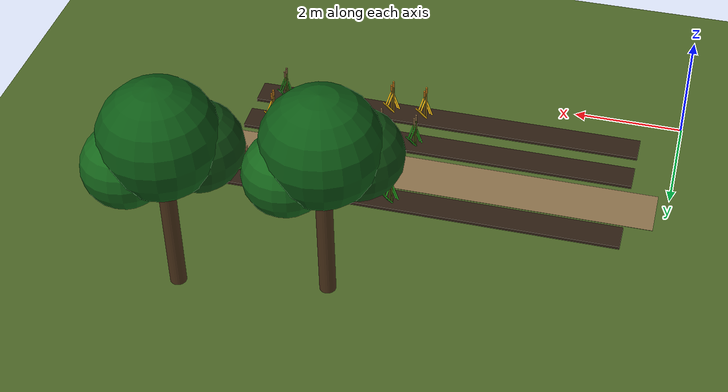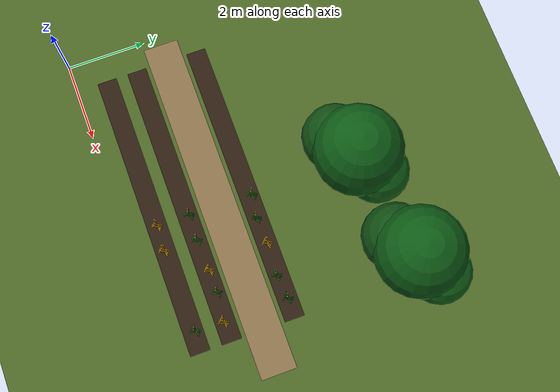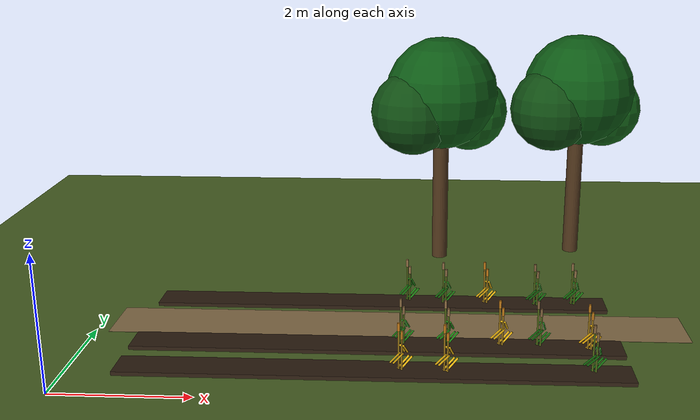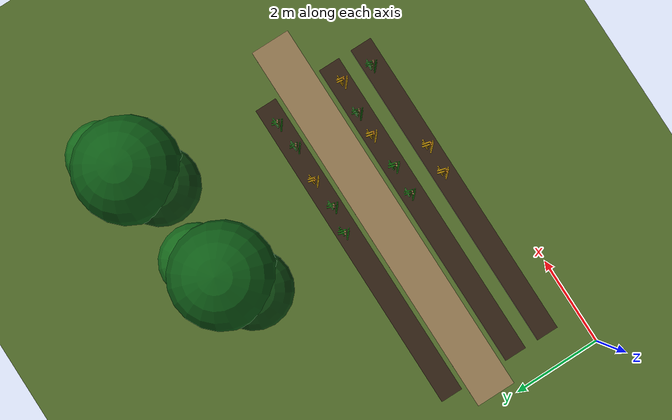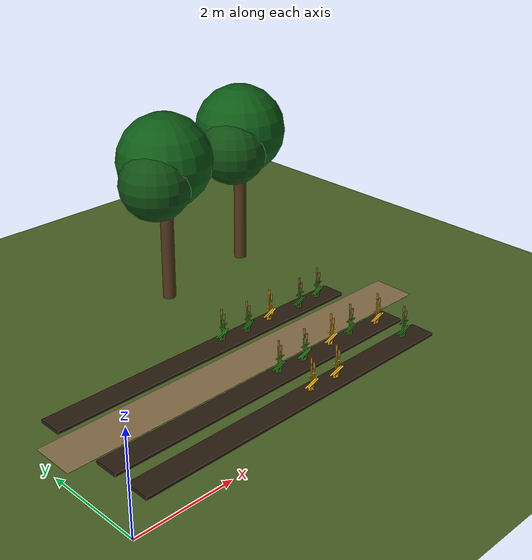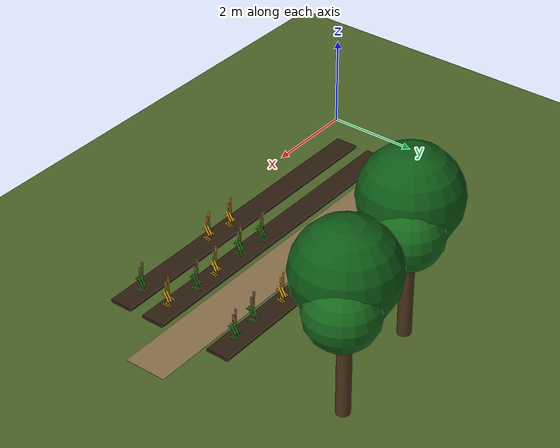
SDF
<sdf version="1.6">
 <world name="default">
  <model name="ground">
   <static>true</static>
   <link name="link">
    <collision name="col"><geometry><plane><normal>0 0 1</normal><size>40 40</size></plane></geometry></collision>
    <visual name="vis">
     <geometry><plane><normal>0 0 1</normal><size>40 40</size></plane></geometry>
     <material><ambient>0.30 0.40 0.15 1</ambient><diffuse>0.30 0.40 0.15 1</diffuse></material>
    </visual>
   </link>
  </model>
  <model name="bed_1b">
   <static>true</static>
   <pose>4.35 0.80 0.030 0 0 0.00</pose>
   <link name="link">
    <visual name="v">
     <geometry><box><size>7.30 0.50 0.060</size></box></geometry>
     <material><ambient>0.18 0.12 0.07 1</ambient><diffuse>0.18 0.12 0.07 1</diffuse></material>
    </visual>
   </link>
  </model>
  <model name="plant_16">
   <static>true</static>
   <pose>4.72 0.82 0 0 0 0</pose>
   <link name="link">
    <visual name="stem_0">
     <pose>0.000 0.000 0.320 0.000 0.000 0.000</pose>
     <geometry><cylinder><radius>0.014</radius><length>0.64</length></cylinder></geometry>
     <material><ambient>0.55 0.42 0.08 1</ambient><diffuse>0.55 0.42 0.08 1</diffuse></material>
    </visual>
    <visual name="leaf_0_0">
     <pose>0.050 0.040 0.130 0.000 0.700 0.150</pose>
     <geometry><cylinder><radius>0.014</radius><length>0.3</length></cylinder></geometry>
     <material><ambient>0.95 0.73 0.06 1</ambient><diffuse>0.95 0.73 0.06 1</diffuse></material>
    </visual>
    <visual name="leaf_0_1">
     <pose>-0.050 -0.040 0.250 0.000 -0.720 2.400</pose>
     <geometry><cylinder><radius>0.014</radius><length>0.28</length></cylinder></geometry>
     <material><ambient>0.95 0.73 0.06 1</ambient><diffuse>0.95 0.73 0.06 1</diffuse></material>
    </visual>
    <visual name="leaf_0_2">
     <pose>0.050 0.040 0.360 0.000 0.780 4.400</pose>
     <geometry><cylinder><radius>0.014</radius><length>0.24</length></cylinder></geometry>
     <material><ambient>0.95 0.73 0.06 1</ambient><diffuse>0.95 0.73 0.06 1</diffuse></material>
    </visual>
    <visual name="ear_0">
     <pose>0.000 0.000 0.700 0.000 0.000 0.000</pose>
     <geometry><cylinder><radius>0.02</radius><length>0.12</length></cylinder></geometry>
     <material><ambient>0.72 0.45 0.08 1</ambient><diffuse>0.72 0.45 0.08 1</diffuse></material>
    </visual>
    <visual name="stem_1">
     <pose>0.045 -0.025 0.265 0.000 0.000 0.000</pose>
     <geometry><cylinder><radius>0.014</radius><length>0.53</length></cylinder></geometry>
     <material><ambient>0.55 0.42 0.08 1</ambient><diffuse>0.55 0.42 0.08 1</diffuse></material>
    </visual>
    <visual name="leaf_1_0">
     <pose>0.095 0.015 0.130 0.000 0.700 0.150</pose>
     <geometry><cylinder><radius>0.014</radius><length>0.3</length></cylinder></geometry>
     <material><ambient>0.95 0.73 0.06 1</ambient><diffuse>0.95 0.73 0.06 1</diffuse></material>
    </visual>
    <visual name="leaf_1_1">
     <pose>-0.005 -0.065 0.250 0.000 -0.720 2.400</pose>
     <geometry><cylinder><radius>0.014</radius><length>0.28</length></cylinder></geometry>
     <material><ambient>0.95 0.73 0.06 1</ambient><diffuse>0.95 0.73 0.06 1</diffuse></material>
    </visual>
    <visual name="leaf_1_2">
     <pose>0.095 0.015 0.360 0.000 0.780 4.400</pose>
     <geometry><cylinder><radius>0.014</radius><length>0.24</length></cylinder></geometry>
     <material><ambient>0.95 0.73 0.06 1</ambient><diffuse>0.95 0.73 0.06 1</diffuse></material>
    </visual>
    <visual name="ear_1">
     <pose>0.045 -0.025 0.590 0.000 0.000 0.000</pose>
     <geometry><cylinder><radius>0.02</radius><length>0.12</length></cylinder></geometry>
     <material><ambient>0.72 0.45 0.08 1</ambient><diffuse>0.72 0.45 0.08 1</diffuse></material>
    </visual>
   </link>
  </model>
  <model name="plant_17">
   <static>true</static>
   <pose>5.36 0.79 0 0 0 0</pose>
   <link name="link">
    <visual name="stem_0">
     <pose>0.000 0.000 0.320 0.000 0.000 0.000</pose>
     <geometry><cylinder><radius>0.014</radius><length>0.64</length></cylinder></geometry>
     <material><ambient>0.55 0.42 0.08 1</ambient><diffuse>0.55 0.42 0.08 1</diffuse></material>
    </visual>
    <visual name="leaf_0_0">
     <pose>0.050 0.040 0.130 0.000 0.700 0.150</pose>
     <geometry><cylinder><radius>0.014</radius><length>0.3</length></cylinder></geometry>
     <material><ambient>0.95 0.73 0.06 1</ambient><diffuse>0.95 0.73 0.06 1</diffuse></material>
    </visual>
    <visual name="leaf_0_1">
     <pose>-0.050 -0.040 0.250 0.000 -0.720 2.400</pose>
     <geometry><cylinder><radius>0.014</radius><length>0.28</length></cylinder></geometry>
     <material><ambient>0.95 0.73 0.06 1</ambient><diffuse>0.95 0.73 0.06 1</diffuse></material>
    </visual>
    <visual name="leaf_0_2">
     <pose>0.050 0.040 0.360 0.000 0.780 4.400</pose>
     <geometry><cylinder><radius>0.014</radius><length>0.24</length></cylinder></geometry>
     <material><ambient>0.95 0.73 0.06 1</ambient><diffuse>0.95 0.73 0.06 1</diffuse></material>
    </visual>
    <visual name="ear_0">
     <pose>0.000 0.000 0.700 0.000 0.000 0.000</pose>
     <geometry><cylinder><radius>0.02</radius><length>0.12</length></cylinder></geometry>
     <material><ambient>0.72 0.45 0.08 1</ambient><diffuse>0.72 0.45 0.08 1</diffuse></material>
    </visual>
    <visual name="stem_1">
     <pose>0.045 -0.025 0.265 0.000 0.000 0.000</pose>
     <geometry><cylinder><radius>0.014</radius><length>0.53</length></cylinder></geometry>
     <material><ambient>0.55 0.42 0.08 1</ambient><diffuse>0.55 0.42 0.08 1</diffuse></material>
    </visual>
    <visual name="leaf_1_0">
     <pose>0.095 0.015 0.130 0.000 0.700 0.150</pose>
     <geometry><cylinder><radius>0.014</radius><length>0.3</length></cylinder></geometry>
     <material><ambient>0.95 0.73 0.06 1</ambient><diffuse>0.95 0.73 0.06 1</diffuse></material>
    </visual>
    <visual name="leaf_1_1">
     <pose>-0.005 -0.065 0.250 0.000 -0.720 2.400</pose>
     <geometry><cylinder><radius>0.014</radius><length>0.28</length></cylinder></geometry>
     <material><ambient>0.95 0.73 0.06 1</ambient><diffuse>0.95 0.73 0.06 1</diffuse></material>
    </visual>
    <visual name="leaf_1_2">
     <pose>0.095 0.015 0.360 0.000 0.780 4.400</pose>
     <geometry><cylinder><radius>0.014</radius><length>0.24</length></cylinder></geometry>
     <material><ambient>0.95 0.73 0.06 1</ambient><diffuse>0.95 0.73 0.06 1</diffuse></material>
    </visual>
    <visual name="ear_1">
     <pose>0.045 -0.025 0.590 0.000 0.000 0.000</pose>
     <geometry><cylinder><radius>0.02</radius><length>0.12</length></cylinder></geometry>
     <material><ambient>0.72 0.45 0.08 1</ambient><diffuse>0.72 0.45 0.08 1</diffuse></material>
    </visual>
   </link>
  </model>
  <model name="plant_20">
   <static>true</static>
   <pose>7.43 0.87 0 0 0 0</pose>
   <link name="link">
    <visual name="stem_0">
     <pose>0.000 0.000 0.320 0.000 0.000 0.000</pose>
     <geometry><cylinder><radius>0.014</radius><length>0.64</length></cylinder></geometry>
     <material><ambient>0.30 0.38 0.08 1</ambient><diffuse>0.30 0.38 0.08 1</diffuse></material>
    </visual>
    <visual name="leaf_0_0">
     <pose>0.050 0.040 0.130 0.000 0.700 0.150</pose>
     <geometry><cylinder><radius>0.014</radius><length>0.3</length></cylinder></geometry>
     <material><ambient>0.08 0.42 0.05 1</ambient><diffuse>0.08 0.42 0.05 1</diffuse></material>
    </visual>
    <visual name="leaf_0_1">
     <pose>-0.050 -0.040 0.250 0.000 -0.720 2.400</pose>
     <geometry><cylinder><radius>0.014</radius><length>0.28</length></cylinder></geometry>
     <material><ambient>0.08 0.42 0.05 1</ambient><diffuse>0.08 0.42 0.05 1</diffuse></material>
    </visual>
    <visual name="leaf_0_2">
     <pose>0.050 0.040 0.360 0.000 0.780 4.400</pose>
     <geometry><cylinder><radius>0.014</radius><length>0.24</length></cylinder></geometry>
     <material><ambient>0.08 0.42 0.05 1</ambient><diffuse>0.08 0.42 0.05 1</diffuse></material>
    </visual>
    <visual name="ear_0">
     <pose>0.000 0.000 0.700 0.000 0.000 0.000</pose>
     <geometry><cylinder><radius>0.02</radius><length>0.12</length></cylinder></geometry>
     <material><ambient>0.48 0.36 0.22 1</ambient><diffuse>0.48 0.36 0.22 1</diffuse></material>
    </visual>
    <visual name="stem_1">
     <pose>0.045 -0.025 0.265 0.000 0.000 0.000</pose>
     <geometry><cylinder><radius>0.014</radius><length>0.53</length></cylinder></geometry>
     <material><ambient>0.30 0.38 0.08 1</ambient><diffuse>0.30 0.38 0.08 1</diffuse></material>
    </visual>
    <visual name="leaf_1_0">
     <pose>0.095 0.015 0.130 0.000 0.700 0.150</pose>
     <geometry><cylinder><radius>0.014</radius><length>0.3</length></cylinder></geometry>
     <material><ambient>0.08 0.42 0.05 1</ambient><diffuse>0.08 0.42 0.05 1</diffuse></material>
    </visual>
    <visual name="leaf_1_1">
     <pose>-0.005 -0.065 0.250 0.000 -0.720 2.400</pose>
     <geometry><cylinder><radius>0.014</radius><length>0.28</length></cylinder></geometry>
     <material><ambient>0.08 0.42 0.05 1</ambient><diffuse>0.08 0.42 0.05 1</diffuse></material>
    </visual>
    <visual name="leaf_1_2">
     <pose>0.095 0.015 0.360 0.000 0.780 4.400</pose>
     <geometry><cylinder><radius>0.014</radius><length>0.24</length></cylinder></geometry>
     <material><ambient>0.08 0.42 0.05 1</ambient><diffuse>0.08 0.42 0.05 1</diffuse></material>
    </visual>
    <visual name="ear_1">
     <pose>0.045 -0.025 0.590 0.000 0.000 0.000</pose>
     <geometry><cylinder><radius>0.02</radius><length>0.12</length></cylinder></geometry>
     <material><ambient>0.48 0.36 0.22 1</ambient><diffuse>0.48 0.36 0.22 1</diffuse></material>
    </visual>
   </link>
  </model>
  <model name="path_2">
   <static>true</static>
   <pose>4.65 2.40 0.002 0 0 0.00</pose>
   <link name="link">
    <visual name="v">
     <geometry><box><size>8.90 0.90 0.004</size></box></geometry>
     <material><ambient>0.55 0.45 0.30 1</ambient><diffuse>0.55 0.45 0.30 1</diffuse></material>
    </visual>
   </link>
  </model>
  <model name="bed_2a">
   <static>true</static>
   <pose>4.35 1.60 0.030 0 0 0.00</pose>
   <link name="link">
    <visual name="v">
     <geometry><box><size>7.30 0.50 0.060</size></box></geometry>
     <material><ambient>0.18 0.12 0.07 1</ambient><diffuse>0.18 0.12 0.07 1</diffuse></material>
    </visual>
   </link>
  </model>
  <model name="plant_26">
   <static>true</static>
   <pose>4.72 1.65 0 0 0 0</pose>
   <link name="link">
    <visual name="stem_0">
     <pose>0.000 0.000 0.320 0.000 0.000 0.000</pose>
     <geometry><cylinder><radius>0.014</radius><length>0.64</length></cylinder></geometry>
     <material><ambient>0.30 0.38 0.08 1</ambient><diffuse>0.30 0.38 0.08 1</diffuse></material>
    </visual>
    <visual name="leaf_0_0">
     <pose>0.050 0.040 0.130 0.000 0.700 0.150</pose>
     <geometry><cylinder><radius>0.014</radius><length>0.3</length></cylinder></geometry>
     <material><ambient>0.10 0.48 0.06 1</ambient><diffuse>0.10 0.48 0.06 1</diffuse></material>
    </visual>
    <visual name="leaf_0_1">
     <pose>-0.050 -0.040 0.250 0.000 -0.720 2.400</pose>
     <geometry><cylinder><radius>0.014</radius><length>0.28</length></cylinder></geometry>
     <material><ambient>0.10 0.48 0.06 1</ambient><diffuse>0.10 0.48 0.06 1</diffuse></material>
    </visual>
    <visual name="leaf_0_2">
     <pose>0.050 0.040 0.360 0.000 0.780 4.400</pose>
     <geometry><cylinder><radius>0.014</radius><length>0.24</length></cylinder></geometry>
     <material><ambient>0.10 0.48 0.06 1</ambient><diffuse>0.10 0.48 0.06 1</diffuse></material>
    </visual>
    <visual name="ear_0">
     <pose>0.000 0.000 0.700 0.000 0.000 0.000</pose>
     <geometry><cylinder><radius>0.02</radius><length>0.12</length></cylinder></geometry>
     <material><ambient>0.52 0.40 0.25 1</ambient><diffuse>0.52 0.40 0.25 1</diffuse></material>
    </visual>
    <visual name="stem_1">
     <pose>0.045 -0.025 0.265 0.000 0.000 0.000</pose>
     <geometry><cylinder><radius>0.014</radius><length>0.53</length></cylinder></geometry>
     <material><ambient>0.30 0.38 0.08 1</ambient><diffuse>0.30 0.38 0.08 1</diffuse></material>
    </visual>
    <visual name="leaf_1_0">
     <pose>0.095 0.015 0.130 0.000 0.700 0.150</pose>
     <geometry><cylinder><radius>0.014</radius><length>0.3</length></cylinder></geometry>
     <material><ambient>0.10 0.48 0.06 1</ambient><diffuse>0.10 0.48 0.06 1</diffuse></material>
    </visual>
    <visual name="leaf_1_1">
     <pose>-0.005 -0.065 0.250 0.000 -0.720 2.400</pose>
     <geometry><cylinder><radius>0.014</radius><length>0.28</length></cylinder></geometry>
     <material><ambient>0.10 0.48 0.06 1</ambient><diffuse>0.10 0.48 0.06 1</diffuse></material>
    </visual>
    <visual name="leaf_1_2">
     <pose>0.095 0.015 0.360 0.000 0.780 4.400</pose>
     <geometry><cylinder><radius>0.014</radius><length>0.24</length></cylinder></geometry>
     <material><ambient>0.10 0.48 0.06 1</ambient><diffuse>0.10 0.48 0.06 1</diffuse></material>
    </visual>
    <visual name="ear_1">
     <pose>0.045 -0.025 0.590 0.000 0.000 0.000</pose>
     <geometry><cylinder><radius>0.02</radius><length>0.12</length></cylinder></geometry>
     <material><ambient>0.52 0.40 0.25 1</ambient><diffuse>0.52 0.40 0.25 1</diffuse></material>
    </visual>
   </link>
  </model>
  <model name="plant_27">
   <static>true</static>
   <pose>5.38 1.62 0 0 0 0</pose>
   <link name="link">
    <visual name="stem_0">
     <pose>0.000 0.000 0.320 0.000 0.000 0.000</pose>
     <geometry><cylinder><radius>0.014</radius><length>0.64</length></cylinder></geometry>
     <material><ambient>0.30 0.38 0.08 1</ambient><diffuse>0.30 0.38 0.08 1</diffuse></material>
    </visual>
    <visual name="leaf_0_0">
     <pose>0.050 0.040 0.130 0.000 0.700 0.150</pose>
     <geometry><cylinder><radius>0.014</radius><length>0.3</length></cylinder></geometry>
     <material><ambient>0.12 0.55 0.08 1</ambient><diffuse>0.12 0.55 0.08 1</diffuse></material>
    </visual>
    <visual name="leaf_0_1">
     <pose>-0.050 -0.040 0.250 0.000 -0.720 2.400</pose>
     <geometry><cylinder><radius>0.014</radius><length>0.28</length></cylinder></geometry>
     <material><ambient>0.12 0.55 0.08 1</ambient><diffuse>0.12 0.55 0.08 1</diffuse></material>
    </visual>
    <visual name="leaf_0_2">
     <pose>0.050 0.040 0.360 0.000 0.780 4.400</pose>
     <geometry><cylinder><radius>0.014</radius><length>0.24</length></cylinder></geometry>
     <material><ambient>0.12 0.55 0.08 1</ambient><diffuse>0.12 0.55 0.08 1</diffuse></material>
    </visual>
    <visual name="ear_0">
     <pose>0.000 0.000 0.700 0.000 0.000 0.000</pose>
     <geometry><cylinder><radius>0.02</radius><length>0.12</length></cylinder></geometry>
     <material><ambient>0.56 0.43 0.26 1</ambient><diffuse>0.56 0.43 0.26 1</diffuse></material>
    </visual>
    <visual name="stem_1">
     <pose>0.045 -0.025 0.265 0.000 0.000 0.000</pose>
     <geometry><cylinder><radius>0.014</radius><length>0.53</length></cylinder></geometry>
     <material><ambient>0.30 0.38 0.08 1</ambient><diffuse>0.30 0.38 0.08 1</diffuse></material>
    </visual>
    <visual name="leaf_1_0">
     <pose>0.095 0.015 0.130 0.000 0.700 0.150</pose>
     <geometry><cylinder><radius>0.014</radius><length>0.3</length></cylinder></geometry>
     <material><ambient>0.12 0.55 0.08 1</ambient><diffuse>0.12 0.55 0.08 1</diffuse></material>
    </visual>
    <visual name="leaf_1_1">
     <pose>-0.005 -0.065 0.250 0.000 -0.720 2.400</pose>
     <geometry><cylinder><radius>0.014</radius><length>0.28</length></cylinder></geometry>
     <material><ambient>0.12 0.55 0.08 1</ambient><diffuse>0.12 0.55 0.08 1</diffuse></material>
    </visual>
    <visual name="leaf_1_2">
     <pose>0.095 0.015 0.360 0.000 0.780 4.400</pose>
     <geometry><cylinder><radius>0.014</radius><length>0.24</length></cylinder></geometry>
     <material><ambient>0.12 0.55 0.08 1</ambient><diffuse>0.12 0.55 0.08 1</diffuse></material>
    </visual>
    <visual name="ear_1">
     <pose>0.045 -0.025 0.590 0.000 0.000 0.000</pose>
     <geometry><cylinder><radius>0.02</radius><length>0.12</length></cylinder></geometry>
     <material><ambient>0.56 0.43 0.26 1</ambient><diffuse>0.56 0.43 0.26 1</diffuse></material>
    </visual>
   </link>
  </model>
  <model name="plant_28">
   <static>true</static>
   <pose>6.18 1.66 0 0 0 0</pose>
   <link name="link">
    <visual name="stem_0">
     <pose>0.000 0.000 0.320 0.000 0.000 0.000</pose>
     <geometry><cylinder><radius>0.014</radius><length>0.64</length></cylinder></geometry>
     <material><ambient>0.55 0.42 0.08 1</ambient><diffuse>0.55 0.42 0.08 1</diffuse></material>
    </visual>
    <visual name="leaf_0_0">
     <pose>0.050 0.040 0.130 0.000 0.700 0.150</pose>
     <geometry><cylinder><radius>0.014</radius><length>0.3</length></cylinder></geometry>
     <material><ambient>0.95 0.73 0.06 1</ambient><diffuse>0.95 0.73 0.06 1</diffuse></material>
    </visual>
    <visual name="leaf_0_1">
     <pose>-0.050 -0.040 0.250 0.000 -0.720 2.400</pose>
     <geometry><cylinder><radius>0.014</radius><length>0.28</length></cylinder></geometry>
     <material><ambient>0.95 0.73 0.06 1</ambient><diffuse>0.95 0.73 0.06 1</diffuse></material>
    </visual>
    <visual name="leaf_0_2">
     <pose>0.050 0.040 0.360 0.000 0.780 4.400</pose>
     <geometry><cylinder><radius>0.014</radius><length>0.24</length></cylinder></geometry>
     <material><ambient>0.95 0.73 0.06 1</ambient><diffuse>0.95 0.73 0.06 1</diffuse></material>
    </visual>
    <visual name="ear_0">
     <pose>0.000 0.000 0.700 0.000 0.000 0.000</pose>
     <geometry><cylinder><radius>0.02</radius><length>0.12</length></cylinder></geometry>
     <material><ambient>0.72 0.45 0.08 1</ambient><diffuse>0.72 0.45 0.08 1</diffuse></material>
    </visual>
    <visual name="stem_1">
     <pose>0.045 -0.025 0.265 0.000 0.000 0.000</pose>
     <geometry><cylinder><radius>0.014</radius><length>0.53</length></cylinder></geometry>
     <material><ambient>0.55 0.42 0.08 1</ambient><diffuse>0.55 0.42 0.08 1</diffuse></material>
    </visual>
    <visual name="leaf_1_0">
     <pose>0.095 0.015 0.130 0.000 0.700 0.150</pose>
     <geometry><cylinder><radius>0.014</radius><length>0.3</length></cylinder></geometry>
     <material><ambient>0.95 0.73 0.06 1</ambient><diffuse>0.95 0.73 0.06 1</diffuse></material>
    </visual>
    <visual name="leaf_1_1">
     <pose>-0.005 -0.065 0.250 0.000 -0.720 2.400</pose>
     <geometry><cylinder><radius>0.014</radius><length>0.28</length></cylinder></geometry>
     <material><ambient>0.95 0.73 0.06 1</ambient><diffuse>0.95 0.73 0.06 1</diffuse></material>
    </visual>
    <visual name="leaf_1_2">
     <pose>0.095 0.015 0.360 0.000 0.780 4.400</pose>
     <geometry><cylinder><radius>0.014</radius><length>0.24</length></cylinder></geometry>
     <material><ambient>0.95 0.73 0.06 1</ambient><diffuse>0.95 0.73 0.06 1</diffuse></material>
    </visual>
    <visual name="ear_1">
     <pose>0.045 -0.025 0.590 0.000 0.000 0.000</pose>
     <geometry><cylinder><radius>0.02</radius><length>0.12</length></cylinder></geometry>
     <material><ambient>0.72 0.45 0.08 1</ambient><diffuse>0.72 0.45 0.08 1</diffuse></material>
    </visual>
   </link>
  </model>
  <model name="plant_29">
   <static>true</static>
   <pose>6.74 1.66 0 0 0 0</pose>
   <link name="link">
    <visual name="stem_0">
     <pose>0.000 0.000 0.320 0.000 0.000 0.000</pose>
     <geometry><cylinder><radius>0.014</radius><length>0.64</length></cylinder></geometry>
     <material><ambient>0.30 0.38 0.08 1</ambient><diffuse>0.30 0.38 0.08 1</diffuse></material>
    </visual>
    <visual name="leaf_0_0">
     <pose>0.050 0.040 0.130 0.000 0.700 0.150</pose>
     <geometry><cylinder><radius>0.014</radius><length>0.3</length></cylinder></geometry>
     <material><ambient>0.08 0.42 0.05 1</ambient><diffuse>0.08 0.42 0.05 1</diffuse></material>
    </visual>
    <visual name="leaf_0_1">
     <pose>-0.050 -0.040 0.250 0.000 -0.720 2.400</pose>
     <geometry><cylinder><radius>0.014</radius><length>0.28</length></cylinder></geometry>
     <material><ambient>0.08 0.42 0.05 1</ambient><diffuse>0.08 0.42 0.05 1</diffuse></material>
    </visual>
    <visual name="leaf_0_2">
     <pose>0.050 0.040 0.360 0.000 0.780 4.400</pose>
     <geometry><cylinder><radius>0.014</radius><length>0.24</length></cylinder></geometry>
     <material><ambient>0.08 0.42 0.05 1</ambient><diffuse>0.08 0.42 0.05 1</diffuse></material>
    </visual>
    <visual name="ear_0">
     <pose>0.000 0.000 0.700 0.000 0.000 0.000</pose>
     <geometry><cylinder><radius>0.02</radius><length>0.12</length></cylinder></geometry>
     <material><ambient>0.48 0.36 0.22 1</ambient><diffuse>0.48 0.36 0.22 1</diffuse></material>
    </visual>
    <visual name="stem_1">
     <pose>0.045 -0.025 0.265 0.000 0.000 0.000</pose>
     <geometry><cylinder><radius>0.014</radius><length>0.53</length></cylinder></geometry>
     <material><ambient>0.30 0.38 0.08 1</ambient><diffuse>0.30 0.38 0.08 1</diffuse></material>
    </visual>
    <visual name="leaf_1_0">
     <pose>0.095 0.015 0.130 0.000 0.700 0.150</pose>
     <geometry><cylinder><radius>0.014</radius><length>0.3</length></cylinder></geometry>
     <material><ambient>0.08 0.42 0.05 1</ambient><diffuse>0.08 0.42 0.05 1</diffuse></material>
    </visual>
    <visual name="leaf_1_1">
     <pose>-0.005 -0.065 0.250 0.000 -0.720 2.400</pose>
     <geometry><cylinder><radius>0.014</radius><length>0.28</length></cylinder></geometry>
     <material><ambient>0.08 0.42 0.05 1</ambient><diffuse>0.08 0.42 0.05 1</diffuse></material>
    </visual>
    <visual name="leaf_1_2">
     <pose>0.095 0.015 0.360 0.000 0.780 4.400</pose>
     <geometry><cylinder><radius>0.014</radius><length>0.24</length></cylinder></geometry>
     <material><ambient>0.08 0.42 0.05 1</ambient><diffuse>0.08 0.42 0.05 1</diffuse></material>
    </visual>
    <visual name="ear_1">
     <pose>0.045 -0.025 0.590 0.000 0.000 0.000</pose>
     <geometry><cylinder><radius>0.02</radius><length>0.12</length></cylinder></geometry>
     <material><ambient>0.48 0.36 0.22 1</ambient><diffuse>0.48 0.36 0.22 1</diffuse></material>
    </visual>
   </link>
  </model>
  <model name="plant_30">
   <static>true</static>
   <pose>7.47 1.57 0 0 0 0</pose>
   <link name="link">
    <visual name="stem_0">
     <pose>0.000 0.000 0.320 0.000 0.000 0.000</pose>
     <geometry><cylinder><radius>0.014</radius><length>0.64</length></cylinder></geometry>
     <material><ambient>0.55 0.42 0.08 1</ambient><diffuse>0.55 0.42 0.08 1</diffuse></material>
    </visual>
    <visual name="leaf_0_0">
     <pose>0.050 0.040 0.130 0.000 0.700 0.150</pose>
     <geometry><cylinder><radius>0.014</radius><length>0.3</length></cylinder></geometry>
     <material><ambient>0.92 0.68 0.04 1</ambient><diffuse>0.92 0.68 0.04 1</diffuse></material>
    </visual>
    <visual name="leaf_0_1">
     <pose>-0.050 -0.040 0.250 0.000 -0.720 2.400</pose>
     <geometry><cylinder><radius>0.014</radius><length>0.28</length></cylinder></geometry>
     <material><ambient>0.92 0.68 0.04 1</ambient><diffuse>0.92 0.68 0.04 1</diffuse></material>
    </visual>
    <visual name="leaf_0_2">
     <pose>0.050 0.040 0.360 0.000 0.780 4.400</pose>
     <geometry><cylinder><radius>0.014</radius><length>0.24</length></cylinder></geometry>
     <material><ambient>0.92 0.68 0.04 1</ambient><diffuse>0.92 0.68 0.04 1</diffuse></material>
    </visual>
    <visual name="ear_0">
     <pose>0.000 0.000 0.700 0.000 0.000 0.000</pose>
     <geometry><cylinder><radius>0.02</radius><length>0.12</length></cylinder></geometry>
     <material><ambient>0.68 0.43 0.08 1</ambient><diffuse>0.68 0.43 0.08 1</diffuse></material>
    </visual>
    <visual name="stem_1">
     <pose>0.045 -0.025 0.265 0.000 0.000 0.000</pose>
     <geometry><cylinder><radius>0.014</radius><length>0.53</length></cylinder></geometry>
     <material><ambient>0.55 0.42 0.08 1</ambient><diffuse>0.55 0.42 0.08 1</diffuse></material>
    </visual>
    <visual name="leaf_1_0">
     <pose>0.095 0.015 0.130 0.000 0.700 0.150</pose>
     <geometry><cylinder><radius>0.014</radius><length>0.3</length></cylinder></geometry>
     <material><ambient>0.92 0.68 0.04 1</ambient><diffuse>0.92 0.68 0.04 1</diffuse></material>
    </visual>
    <visual name="leaf_1_1">
     <pose>-0.005 -0.065 0.250 0.000 -0.720 2.400</pose>
     <geometry><cylinder><radius>0.014</radius><length>0.28</length></cylinder></geometry>
     <material><ambient>0.92 0.68 0.04 1</ambient><diffuse>0.92 0.68 0.04 1</diffuse></material>
    </visual>
    <visual name="leaf_1_2">
     <pose>0.095 0.015 0.360 0.000 0.780 4.400</pose>
     <geometry><cylinder><radius>0.014</radius><length>0.24</length></cylinder></geometry>
     <material><ambient>0.92 0.68 0.04 1</ambient><diffuse>0.92 0.68 0.04 1</diffuse></material>
    </visual>
    <visual name="ear_1">
     <pose>0.045 -0.025 0.590 0.000 0.000 0.000</pose>
     <geometry><cylinder><radius>0.02</radius><length>0.12</length></cylinder></geometry>
     <material><ambient>0.68 0.43 0.08 1</ambient><diffuse>0.68 0.43 0.08 1</diffuse></material>
    </visual>
   </link>
  </model>
  <model name="bed_2b">
   <static>true</static>
   <pose>4.35 3.20 0.030 0 0 0.00</pose>
   <link name="link">
    <visual name="v">
     <geometry><box><size>7.30 0.50 0.060</size></box></geometry>
     <material><ambient>0.18 0.12 0.07 1</ambient><diffuse>0.18 0.12 0.07 1</diffuse></material>
    </visual>
   </link>
  </model>
  <model name="plant_36">
   <static>true</static>
   <pose>4.77 3.26 0 0 0 0</pose>
   <link name="link">
    <visual name="stem_0">
     <pose>0.000 0.000 0.320 0.000 0.000 0.000</pose>
     <geometry><cylinder><radius>0.014</radius><length>0.64</length></cylinder></geometry>
     <material><ambient>0.30 0.38 0.08 1</ambient><diffuse>0.30 0.38 0.08 1</diffuse></material>
    </visual>
    <visual name="leaf_0_0">
     <pose>0.050 0.040 0.130 0.000 0.700 0.150</pose>
     <geometry><cylinder><radius>0.014</radius><length>0.3</length></cylinder></geometry>
     <material><ambient>0.12 0.55 0.08 1</ambient><diffuse>0.12 0.55 0.08 1</diffuse></material>
    </visual>
    <visual name="leaf_0_1">
     <pose>-0.050 -0.040 0.250 0.000 -0.720 2.400</pose>
     <geometry><cylinder><radius>0.014</radius><length>0.28</length></cylinder></geometry>
     <material><ambient>0.12 0.55 0.08 1</ambient><diffuse>0.12 0.55 0.08 1</diffuse></material>
    </visual>
    <visual name="leaf_0_2">
     <pose>0.050 0.040 0.360 0.000 0.780 4.400</pose>
     <geometry><cylinder><radius>0.014</radius><length>0.24</length></cylinder></geometry>
     <material><ambient>0.12 0.55 0.08 1</ambient><diffuse>0.12 0.55 0.08 1</diffuse></material>
    </visual>
    <visual name="ear_0">
     <pose>0.000 0.000 0.700 0.000 0.000 0.000</pose>
     <geometry><cylinder><radius>0.02</radius><length>0.12</length></cylinder></geometry>
     <material><ambient>0.56 0.43 0.26 1</ambient><diffuse>0.56 0.43 0.26 1</diffuse></material>
    </visual>
    <visual name="stem_1">
     <pose>0.045 -0.025 0.265 0.000 0.000 0.000</pose>
     <geometry><cylinder><radius>0.014</radius><length>0.53</length></cylinder></geometry>
     <material><ambient>0.30 0.38 0.08 1</ambient><diffuse>0.30 0.38 0.08 1</diffuse></material>
    </visual>
    <visual name="leaf_1_0">
     <pose>0.095 0.015 0.130 0.000 0.700 0.150</pose>
     <geometry><cylinder><radius>0.014</radius><length>0.3</length></cylinder></geometry>
     <material><ambient>0.12 0.55 0.08 1</ambient><diffuse>0.12 0.55 0.08 1</diffuse></material>
    </visual>
    <visual name="leaf_1_1">
     <pose>-0.005 -0.065 0.250 0.000 -0.720 2.400</pose>
     <geometry><cylinder><radius>0.014</radius><length>0.28</length></cylinder></geometry>
     <material><ambient>0.12 0.55 0.08 1</ambient><diffuse>0.12 0.55 0.08 1</diffuse></material>
    </visual>
    <visual name="leaf_1_2">
     <pose>0.095 0.015 0.360 0.000 0.780 4.400</pose>
     <geometry><cylinder><radius>0.014</radius><length>0.24</length></cylinder></geometry>
     <material><ambient>0.12 0.55 0.08 1</ambient><diffuse>0.12 0.55 0.08 1</diffuse></material>
    </visual>
    <visual name="ear_1">
     <pose>0.045 -0.025 0.590 0.000 0.000 0.000</pose>
     <geometry><cylinder><radius>0.02</radius><length>0.12</length></cylinder></geometry>
     <material><ambient>0.56 0.43 0.26 1</ambient><diffuse>0.56 0.43 0.26 1</diffuse></material>
    </visual>
   </link>
  </model>
  <model name="plant_37">
   <static>true</static>
   <pose>5.36 3.16 0 0 0 0</pose>
   <link name="link">
    <visual name="stem_0">
     <pose>0.000 0.000 0.320 0.000 0.000 0.000</pose>
     <geometry><cylinder><radius>0.014</radius><length>0.64</length></cylinder></geometry>
     <material><ambient>0.30 0.38 0.08 1</ambient><diffuse>0.30 0.38 0.08 1</diffuse></material>
    </visual>
    <visual name="leaf_0_0">
     <pose>0.050 0.040 0.130 0.000 0.700 0.150</pose>
     <geometry><cylinder><radius>0.014</radius><length>0.3</length></cylinder></geometry>
     <material><ambient>0.10 0.48 0.06 1</ambient><diffuse>0.10 0.48 0.06 1</diffuse></material>
    </visual>
    <visual name="leaf_0_1">
     <pose>-0.050 -0.040 0.250 0.000 -0.720 2.400</pose>
     <geometry><cylinder><radius>0.014</radius><length>0.28</length></cylinder></geometry>
     <material><ambient>0.10 0.48 0.06 1</ambient><diffuse>0.10 0.48 0.06 1</diffuse></material>
    </visual>
    <visual name="leaf_0_2">
     <pose>0.050 0.040 0.360 0.000 0.780 4.400</pose>
     <geometry><cylinder><radius>0.014</radius><length>0.24</length></cylinder></geometry>
     <material><ambient>0.10 0.48 0.06 1</ambient><diffuse>0.10 0.48 0.06 1</diffuse></material>
    </visual>
    <visual name="ear_0">
     <pose>0.000 0.000 0.700 0.000 0.000 0.000</pose>
     <geometry><cylinder><radius>0.02</radius><length>0.12</length></cylinder></geometry>
     <material><ambient>0.52 0.40 0.25 1</ambient><diffuse>0.52 0.40 0.25 1</diffuse></material>
    </visual>
    <visual name="stem_1">
     <pose>0.045 -0.025 0.265 0.000 0.000 0.000</pose>
     <geometry><cylinder><radius>0.014</radius><length>0.53</length></cylinder></geometry>
     <material><ambient>0.30 0.38 0.08 1</ambient><diffuse>0.30 0.38 0.08 1</diffuse></material>
    </visual>
    <visual name="leaf_1_0">
     <pose>0.095 0.015 0.130 0.000 0.700 0.150</pose>
     <geometry><cylinder><radius>0.014</radius><length>0.3</length></cylinder></geometry>
     <material><ambient>0.10 0.48 0.06 1</ambient><diffuse>0.10 0.48 0.06 1</diffuse></material>
    </visual>
    <visual name="leaf_1_1">
     <pose>-0.005 -0.065 0.250 0.000 -0.720 2.400</pose>
     <geometry><cylinder><radius>0.014</radius><length>0.28</length></cylinder></geometry>
     <material><ambient>0.10 0.48 0.06 1</ambient><diffuse>0.10 0.48 0.06 1</diffuse></material>
    </visual>
    <visual name="leaf_1_2">
     <pose>0.095 0.015 0.360 0.000 0.780 4.400</pose>
     <geometry><cylinder><radius>0.014</radius><length>0.24</length></cylinder></geometry>
     <material><ambient>0.10 0.48 0.06 1</ambient><diffuse>0.10 0.48 0.06 1</diffuse></material>
    </visual>
    <visual name="ear_1">
     <pose>0.045 -0.025 0.590 0.000 0.000 0.000</pose>
     <geometry><cylinder><radius>0.02</radius><length>0.12</length></cylinder></geometry>
     <material><ambient>0.52 0.40 0.25 1</ambient><diffuse>0.52 0.40 0.25 1</diffuse></material>
    </visual>
   </link>
  </model>
  <model name="plant_38">
   <static>true</static>
   <pose>6.03 3.20 0 0 0 0</pose>
   <link name="link">
    <visual name="stem_0">
     <pose>0.000 0.000 0.320 0.000 0.000 0.000</pose>
     <geometry><cylinder><radius>0.014</radius><length>0.64</length></cylinder></geometry>
     <material><ambient>0.55 0.42 0.08 1</ambient><diffuse>0.55 0.42 0.08 1</diffuse></material>
    </visual>
    <visual name="leaf_0_0">
     <pose>0.050 0.040 0.130 0.000 0.700 0.150</pose>
     <geometry><cylinder><radius>0.014</radius><length>0.3</length></cylinder></geometry>
     <material><ambient>0.95 0.73 0.06 1</ambient><diffuse>0.95 0.73 0.06 1</diffuse></material>
    </visual>
    <visual name="leaf_0_1">
     <pose>-0.050 -0.040 0.250 0.000 -0.720 2.400</pose>
     <geometry><cylinder><radius>0.014</radius><length>0.28</length></cylinder></geometry>
     <material><ambient>0.95 0.73 0.06 1</ambient><diffuse>0.95 0.73 0.06 1</diffuse></material>
    </visual>
    <visual name="leaf_0_2">
     <pose>0.050 0.040 0.360 0.000 0.780 4.400</pose>
     <geometry><cylinder><radius>0.014</radius><length>0.24</length></cylinder></geometry>
     <material><ambient>0.95 0.73 0.06 1</ambient><diffuse>0.95 0.73 0.06 1</diffuse></material>
    </visual>
    <visual name="ear_0">
     <pose>0.000 0.000 0.700 0.000 0.000 0.000</pose>
     <geometry><cylinder><radius>0.02</radius><length>0.12</length></cylinder></geometry>
     <material><ambient>0.72 0.45 0.08 1</ambient><diffuse>0.72 0.45 0.08 1</diffuse></material>
    </visual>
    <visual name="stem_1">
     <pose>0.045 -0.025 0.265 0.000 0.000 0.000</pose>
     <geometry><cylinder><radius>0.014</radius><length>0.53</length></cylinder></geometry>
     <material><ambient>0.55 0.42 0.08 1</ambient><diffuse>0.55 0.42 0.08 1</diffuse></material>
    </visual>
    <visual name="leaf_1_0">
     <pose>0.095 0.015 0.130 0.000 0.700 0.150</pose>
     <geometry><cylinder><radius>0.014</radius><length>0.3</length></cylinder></geometry>
     <material><ambient>0.95 0.73 0.06 1</ambient><diffuse>0.95 0.73 0.06 1</diffuse></material>
    </visual>
    <visual name="leaf_1_1">
     <pose>-0.005 -0.065 0.250 0.000 -0.720 2.400</pose>
     <geometry><cylinder><radius>0.014</radius><length>0.28</length></cylinder></geometry>
     <material><ambient>0.95 0.73 0.06 1</ambient><diffuse>0.95 0.73 0.06 1</diffuse></material>
    </visual>
    <visual name="leaf_1_2">
     <pose>0.095 0.015 0.360 0.000 0.780 4.400</pose>
     <geometry><cylinder><radius>0.014</radius><length>0.24</length></cylinder></geometry>
     <material><ambient>0.95 0.73 0.06 1</ambient><diffuse>0.95 0.73 0.06 1</diffuse></material>
    </visual>
    <visual name="ear_1">
     <pose>0.045 -0.025 0.590 0.000 0.000 0.000</pose>
     <geometry><cylinder><radius>0.02</radius><length>0.12</length></cylinder></geometry>
     <material><ambient>0.72 0.45 0.08 1</ambient><diffuse>0.72 0.45 0.08 1</diffuse></material>
    </visual>
   </link>
  </model>
  <model name="plant_39">
   <static>true</static>
   <pose>6.84 3.14 0 0 0 0</pose>
   <link name="link">
    <visual name="stem_0">
     <pose>0.000 0.000 0.320 0.000 0.000 0.000</pose>
     <geometry><cylinder><radius>0.014</radius><length>0.64</length></cylinder></geometry>
     <material><ambient>0.30 0.38 0.08 1</ambient><diffuse>0.30 0.38 0.08 1</diffuse></material>
    </visual>
    <visual name="leaf_0_0">
     <pose>0.050 0.040 0.130 0.000 0.700 0.150</pose>
     <geometry><cylinder><radius>0.014</radius><length>0.3</length></cylinder></geometry>
     <material><ambient>0.08 0.42 0.05 1</ambient><diffuse>0.08 0.42 0.05 1</diffuse></material>
    </visual>
    <visual name="leaf_0_1">
     <pose>-0.050 -0.040 0.250 0.000 -0.720 2.400</pose>
     <geometry><cylinder><radius>0.014</radius><length>0.28</length></cylinder></geometry>
     <material><ambient>0.08 0.42 0.05 1</ambient><diffuse>0.08 0.42 0.05 1</diffuse></material>
    </visual>
    <visual name="leaf_0_2">
     <pose>0.050 0.040 0.360 0.000 0.780 4.400</pose>
     <geometry><cylinder><radius>0.014</radius><length>0.24</length></cylinder></geometry>
     <material><ambient>0.08 0.42 0.05 1</ambient><diffuse>0.08 0.42 0.05 1</diffuse></material>
    </visual>
    <visual name="ear_0">
     <pose>0.000 0.000 0.700 0.000 0.000 0.000</pose>
     <geometry><cylinder><radius>0.02</radius><length>0.12</length></cylinder></geometry>
     <material><ambient>0.48 0.36 0.22 1</ambient><diffuse>0.48 0.36 0.22 1</diffuse></material>
    </visual>
    <visual name="stem_1">
     <pose>0.045 -0.025 0.265 0.000 0.000 0.000</pose>
     <geometry><cylinder><radius>0.014</radius><length>0.53</length></cylinder></geometry>
     <material><ambient>0.30 0.38 0.08 1</ambient><diffuse>0.30 0.38 0.08 1</diffuse></material>
    </visual>
    <visual name="leaf_1_0">
     <pose>0.095 0.015 0.130 0.000 0.700 0.150</pose>
     <geometry><cylinder><radius>0.014</radius><length>0.3</length></cylinder></geometry>
     <material><ambient>0.08 0.42 0.05 1</ambient><diffuse>0.08 0.42 0.05 1</diffuse></material>
    </visual>
    <visual name="leaf_1_1">
     <pose>-0.005 -0.065 0.250 0.000 -0.720 2.400</pose>
     <geometry><cylinder><radius>0.014</radius><length>0.28</length></cylinder></geometry>
     <material><ambient>0.08 0.42 0.05 1</ambient><diffuse>0.08 0.42 0.05 1</diffuse></material>
    </visual>
    <visual name="leaf_1_2">
     <pose>0.095 0.015 0.360 0.000 0.780 4.400</pose>
     <geometry><cylinder><radius>0.014</radius><length>0.24</length></cylinder></geometry>
     <material><ambient>0.08 0.42 0.05 1</ambient><diffuse>0.08 0.42 0.05 1</diffuse></material>
    </visual>
    <visual name="ear_1">
     <pose>0.045 -0.025 0.590 0.000 0.000 0.000</pose>
     <geometry><cylinder><radius>0.02</radius><length>0.12</length></cylinder></geometry>
     <material><ambient>0.48 0.36 0.22 1</ambient><diffuse>0.48 0.36 0.22 1</diffuse></material>
    </visual>
   </link>
  </model>
  <model name="plant_40">
   <static>true</static>
   <pose>7.45 3.20 0 0 0 0</pose>
   <link name="link">
    <visual name="stem_0">
     <pose>0.000 0.000 0.320 0.000 0.000 0.000</pose>
     <geometry><cylinder><radius>0.014</radius><length>0.64</length></cylinder></geometry>
     <material><ambient>0.30 0.38 0.08 1</ambient><diffuse>0.30 0.38 0.08 1</diffuse></material>
    </visual>
    <visual name="leaf_0_0">
     <pose>0.050 0.040 0.130 0.000 0.700 0.150</pose>
     <geometry><cylinder><radius>0.014</radius><length>0.3</length></cylinder></geometry>
     <material><ambient>0.10 0.48 0.06 1</ambient><diffuse>0.10 0.48 0.06 1</diffuse></material>
    </visual>
    <visual name="leaf_0_1">
     <pose>-0.050 -0.040 0.250 0.000 -0.720 2.400</pose>
     <geometry><cylinder><radius>0.014</radius><length>0.28</length></cylinder></geometry>
     <material><ambient>0.10 0.48 0.06 1</ambient><diffuse>0.10 0.48 0.06 1</diffuse></material>
    </visual>
    <visual name="leaf_0_2">
     <pose>0.050 0.040 0.360 0.000 0.780 4.400</pose>
     <geometry><cylinder><radius>0.014</radius><length>0.24</length></cylinder></geometry>
     <material><ambient>0.10 0.48 0.06 1</ambient><diffuse>0.10 0.48 0.06 1</diffuse></material>
    </visual>
    <visual name="ear_0">
     <pose>0.000 0.000 0.700 0.000 0.000 0.000</pose>
     <geometry><cylinder><radius>0.02</radius><length>0.12</length></cylinder></geometry>
     <material><ambient>0.52 0.40 0.25 1</ambient><diffuse>0.52 0.40 0.25 1</diffuse></material>
    </visual>
    <visual name="stem_1">
     <pose>0.045 -0.025 0.265 0.000 0.000 0.000</pose>
     <geometry><cylinder><radius>0.014</radius><length>0.53</length></cylinder></geometry>
     <material><ambient>0.30 0.38 0.08 1</ambient><diffuse>0.30 0.38 0.08 1</diffuse></material>
    </visual>
    <visual name="leaf_1_0">
     <pose>0.095 0.015 0.130 0.000 0.700 0.150</pose>
     <geometry><cylinder><radius>0.014</radius><length>0.3</length></cylinder></geometry>
     <material><ambient>0.10 0.48 0.06 1</ambient><diffuse>0.10 0.48 0.06 1</diffuse></material>
    </visual>
    <visual name="leaf_1_1">
     <pose>-0.005 -0.065 0.250 0.000 -0.720 2.400</pose>
     <geometry><cylinder><radius>0.014</radius><length>0.28</length></cylinder></geometry>
     <material><ambient>0.10 0.48 0.06 1</ambient><diffuse>0.10 0.48 0.06 1</diffuse></material>
    </visual>
    <visual name="leaf_1_2">
     <pose>0.095 0.015 0.360 0.000 0.780 4.400</pose>
     <geometry><cylinder><radius>0.014</radius><length>0.24</length></cylinder></geometry>
     <material><ambient>0.10 0.48 0.06 1</ambient><diffuse>0.10 0.48 0.06 1</diffuse></material>
    </visual>
    <visual name="ear_1">
     <pose>0.045 -0.025 0.590 0.000 0.000 0.000</pose>
     <geometry><cylinder><radius>0.02</radius><length>0.12</length></cylinder></geometry>
     <material><ambient>0.52 0.40 0.25 1</ambient><diffuse>0.52 0.40 0.25 1</diffuse></material>
    </visual>
   </link>
  </model>
  <model name="tree_n3">
   <static>true</static>
   <pose>5.31 5.51 0 0 0 0</pose>
   <link name="link">
    <collision name="trunk_col">
     <pose>0 0 1.1 0 0 0</pose>
     <geometry><cylinder><radius>0.16</radius><length>2.2</length></cylinder></geometry>
    </collision>
    <visual name="trunk">
     <pose>0 0 1.1 0 0 0</pose>
     <geometry><cylinder><radius>0.14</radius><length>2.2</length></cylinder></geometry>
     <material><ambient>0.30 0.20 0.10 1</ambient><diffuse>0.30 0.20 0.10 1</diffuse></material>
    </visual>
    <visual name="crown1">
     <pose>0 0 3.1 0 0 0</pose>
     <geometry><sphere><radius>1.0</radius></sphere></geometry>
     <material><ambient>0.05 0.35 0.08 1</ambient><diffuse>0.05 0.35 0.08 1</diffuse></material>
    </visual>
    <visual name="crown2">
     <pose>0.5 0.3 2.7 0 0 0</pose>
     <geometry><sphere><radius>0.7</radius></sphere></geometry>
     <material><ambient>0.08 0.40 0.10 1</ambient><diffuse>0.08 0.40 0.10 1</diffuse></material>
    </visual>
    <visual name="crown3">
     <pose>-0.5 -0.3 2.8 0 0 0</pose>
     <geometry><sphere><radius>0.75</radius></sphere></geometry>
     <material><ambient>0.06 0.30 0.07 1</ambient><diffuse>0.06 0.30 0.07 1</diffuse></material>
    </visual>
   </link>
  </model>
  <model name="tree_n4">
   <static>true</static>
   <pose>7.80 5.92 0 0 0 0</pose>
   <link name="link">
    <collision name="trunk_col">
     <pose>0 0 1.1 0 0 0</pose>
     <geometry><cylinder><radius>0.16</radius><length>2.2</length></cylinder></geometry>
    </collision>
    <visual name="trunk">
     <pose>0 0 1.1 0 0 0</pose>
     <geometry><cylinder><radius>0.14</radius><length>2.2</length></cylinder></geometry>
     <material><ambient>0.30 0.20 0.10 1</ambient><diffuse>0.30 0.20 0.10 1</diffuse></material>
    </visual>
    <visual name="crown1">
     <pose>0 0 3.1 0 0 0</pose>
     <geometry><sphere><radius>1.0</radius></sphere></geometry>
     <material><ambient>0.05 0.35 0.08 1</ambient><diffuse>0.05 0.35 0.08 1</diffuse></material>
    </visual>
    <visual name="crown2">
     <pose>0.5 0.3 2.7 0 0 0</pose>
     <geometry><sphere><radius>0.7</radius></sphere></geometry>
     <material><ambient>0.08 0.40 0.10 1</ambient><diffuse>0.08 0.40 0.10 1</diffuse></material>
    </visual>
    <visual name="crown3">
     <pose>-0.5 -0.3 2.8 0 0 0</pose>
     <geometry><sphere><radius>0.75</radius></sphere></geometry>
     <material><ambient>0.06 0.30 0.07 1</ambient><diffuse>0.06 0.30 0.07 1</diffuse></material>
    </visual>
   </link>
  </model>
 </world>
</sdf>
